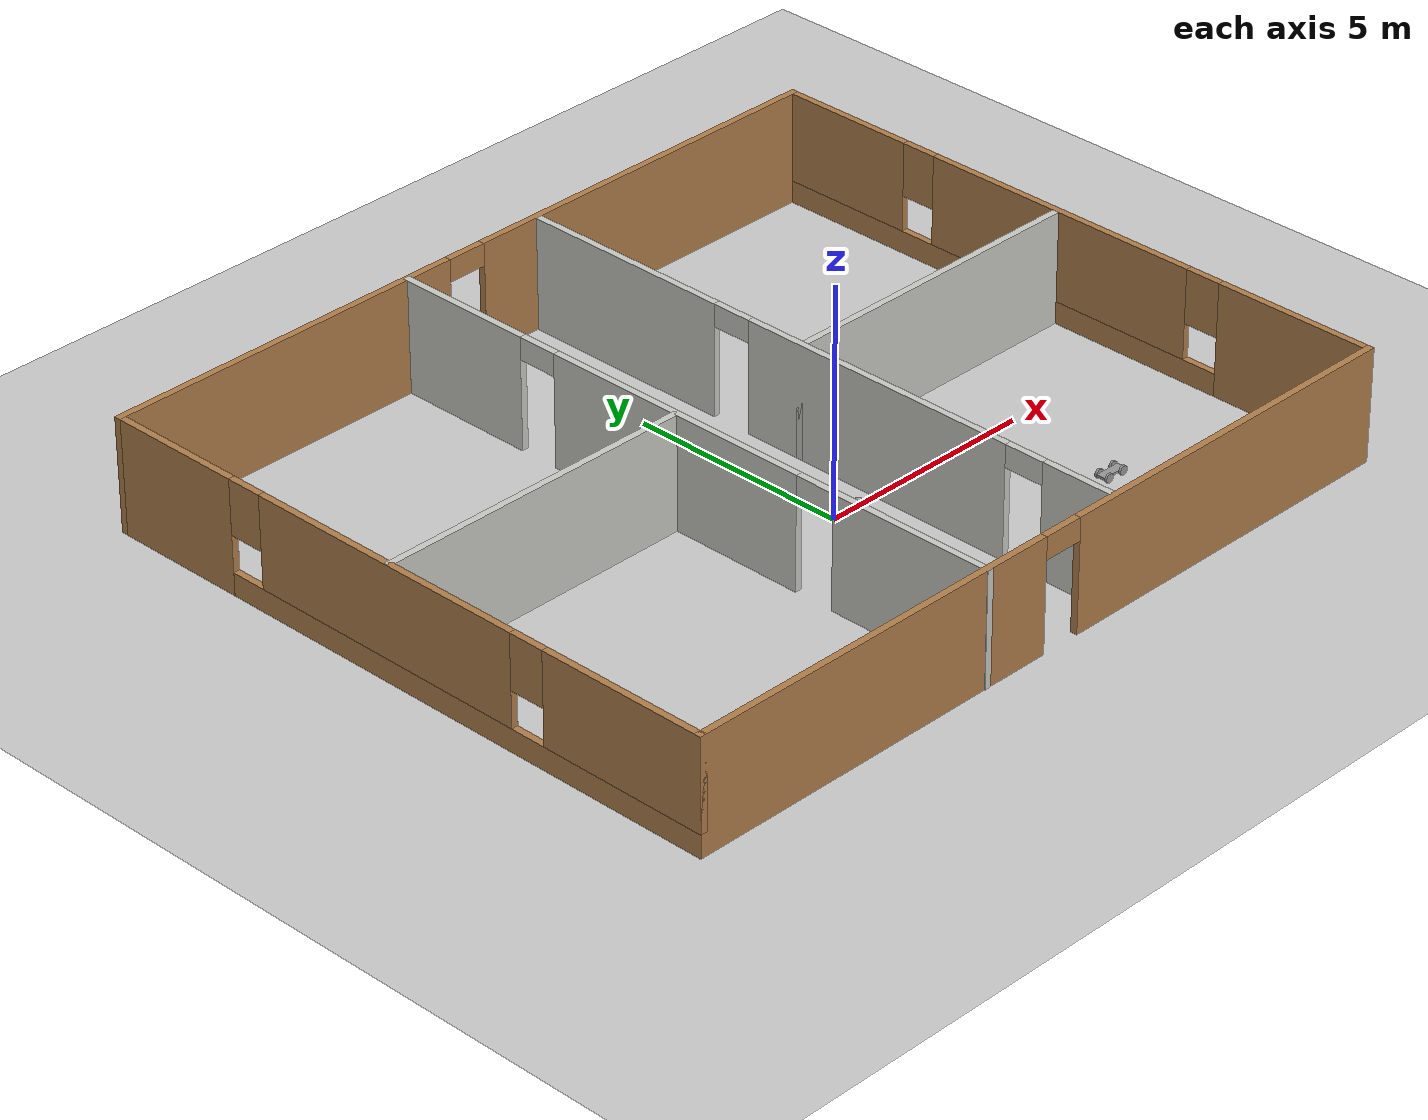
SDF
<sdf version="1.6">
 <world name="default">
  <light name="sun" type="directional">
   <pose>0 0 10 0 -0 0</pose>
   <diffuse>0.8 0.8 0.8 1</diffuse>
   <specular>0.2 0.2 0.2 1</specular>
   <attenuation>
    <range>1000</range>
    <constant>0.9</constant>
    <linear>0.01</linear>
    <quadratic>0.001</quadratic>
   </attenuation>
   <direction>-0.5 0.1 -0.9</direction>
  </light>
  <model name="ground_plane">
   <static>1</static>
   <link name="link">
    <collision name="collision">
     <geometry><plane><normal>0 0 1</normal><size>100 100</size></plane></geometry>
     <surface><friction><ode><mu>100</mu><mu2>50</mu2></ode></friction></surface>
    </collision>
    <visual name="visual">
     <cast_shadows>0</cast_shadows>
     <geometry><plane><normal>0 0 1</normal><size>100 100</size></plane></geometry>
     <material>
      <script><uri>file://media/materials/scripts/gazebo.material</uri><name>Gazebo/Grey</name></script>
     </material>
    </visual>
   </link>
  </model>
  <gravity>0 0 -9.8</gravity>
  <magnetic_field>6e-06 2.3e-05 -4.2e-05</magnetic_field>
  <atmosphere type="adiabatic"/>
  <physics name="default_physics" default="0" type="ode">
   <max_step_size>0.001</max_step_size>
   <real_time_factor>1</real_time_factor>
   <real_time_update_rate>1000</real_time_update_rate>
  </physics>
  <scene><ambient>0.4 0.4 0.4 1</ambient><background>0.7 0.7 0.7 1</background><shadows>1</shadows></scene>
  <spherical_coordinates>
   <surface_model>EARTH_WGS84</surface_model>
   <latitude_deg>0</latitude_deg>
   <longitude_deg>0</longitude_deg>
   <elevation>0</elevation>
   <heading_deg>0</heading_deg>
  </spherical_coordinates>
  <model name="project_building">
   <pose>-0.482591 1.67811 0 0 -0 0</pose>
   <link name="Wall_11">
    <pose>0 -7.43466 0 0 -0 0</pose>
    <visual name="Wall_11_Visual_0">
     <pose>-4.61874 0 1.25 0 -0 0</pose>
     <geometry><box><size>8.76252 0.15 2.5</size></box></geometry>
     <material>
      <script><uri>file://media/materials/scripts/gazebo.material</uri><name>Gazebo/Wood</name></script>
      <ambient>1 1 1 1</ambient>
     </material>
     <meta><layer>0</layer></meta>
    </visual>
    <collision name="Wall_11_Collision_0">
     <geometry><box><size>8.76252 0.15 2.5</size></box></geometry>
     <pose>-4.61874 0 1.25 0 -0 0</pose>
    </collision>
    <visual name="Wall_11_Visual_1">
     <pose>4.83126 0 1.25 0 -0 0</pose>
     <geometry><box><size>8.33748 0.15 2.5</size></box></geometry>
     <material>
      <script><uri>file://media/materials/scripts/gazebo.material</uri><name>Gazebo/Wood</name></script>
      <ambient>1 1 1 1</ambient>
     </material>
     <meta><layer>0</layer></meta>
    </visual>
    <collision name="Wall_11_Collision_1">
     <geometry><box><size>8.33748 0.15 2.5</size></box></geometry>
     <pose>4.83126 0 1.25 0 -0 0</pose>
    </collision>
    <visual name="Wall_11_Visual_2">
     <pose>0.212518 0 2.25 0 -0 0</pose>
     <geometry><box><size>0.9 0.15 0.5</size></box></geometry>
     <material>
      <script><uri>file://media/materials/scripts/gazebo.material</uri><name>Gazebo/Wood</name></script>
      <ambient>1 1 1 1</ambient>
     </material>
     <meta><layer>0</layer></meta>
    </visual>
    <collision name="Wall_11_Collision_2">
     <geometry><box><size>0.9 0.15 0.5</size></box></geometry>
     <pose>0.212518 0 2.25 0 -0 0</pose>
    </collision>
   </link>
   <link name="Wall_12">
    <pose>8.925 0.005346 0 0 -0 1.5708</pose>
    <visual name="Wall_12_Visual_0">
     <pose>-5.68761 0 1.25 0 -0 0</pose>
     <geometry><box><size>3.65478 0.15 2.5</size></box></geometry>
     <material>
      <script><uri>file://media/materials/scripts/gazebo.material</uri><name>Gazebo/Wood</name></script>
      <ambient>1 1 1 1</ambient>
     </material>
     <meta><layer>0</layer></meta>
    </visual>
    <collision name="Wall_12_Collision_0">
     <geometry><box><size>3.65478 0.15 2.5</size></box></geometry>
     <pose>-5.68761 0 1.25 0 -0 0</pose>
    </collision>
    <visual name="Wall_12_Visual_1">
     <pose>1.82739 0 0.25 0 -0 0</pose>
     <geometry><box><size>11.3752 0.15 0.5</size></box></geometry>
     <material>
      <script><uri>file://media/materials/scripts/gazebo.material</uri><name>Gazebo/Wood</name></script>
      <ambient>1 1 1 1</ambient>
     </material>
     <meta><layer>0</layer></meta>
    </visual>
    <collision name="Wall_12_Collision_1">
     <geometry><box><size>11.3752 0.15 0.5</size></box></geometry>
     <pose>1.82739 0 0.25 0 -0 0</pose>
    </collision>
    <visual name="Wall_12_Visual_2">
     <pose>0.2259 0 1.5 0 -0 0</pose>
     <geometry><box><size>6.57224 0.15 2</size></box></geometry>
     <material>
      <script><uri>file://media/materials/scripts/gazebo.material</uri><name>Gazebo/Wood</name></script>
      <ambient>1 1 1 1</ambient>
     </material>
     <meta><layer>0</layer></meta>
    </visual>
    <collision name="Wall_12_Collision_2">
     <geometry><box><size>6.57224 0.15 2</size></box></geometry>
     <pose>0.2259 0 1.5 0 -0 0</pose>
    </collision>
    <visual name="Wall_12_Visual_3">
     <pose>5.91351 0 1.5 0 -0 0</pose>
     <geometry><box><size>3.20298 0.15 2</size></box></geometry>
     <material>
      <script><uri>file://media/materials/scripts/gazebo.material</uri><name>Gazebo/Wood</name></script>
      <ambient>1 1 1 1</ambient>
     </material>
     <meta><layer>0</layer></meta>
    </visual>
    <collision name="Wall_12_Collision_3">
     <geometry><box><size>3.20298 0.15 2</size></box></geometry>
     <pose>5.91351 0 1.5 0 -0 0</pose>
    </collision>
    <visual name="Wall_12_Visual_4">
     <pose>-3.46022 0 1.9 0 -0 0</pose>
     <geometry><box><size>0.8 0.15 1.2</size></box></geometry>
     <material>
      <script><uri>file://media/materials/scripts/gazebo.material</uri><name>Gazebo/Wood</name></script>
      <ambient>1 1 1 1</ambient>
     </material>
     <meta><layer>0</layer></meta>
    </visual>
    <collision name="Wall_12_Collision_4">
     <geometry><box><size>0.8 0.15 1.2</size></box></geometry>
     <pose>-3.46022 0 1.9 0 -0 0</pose>
    </collision>
    <visual name="Wall_12_Visual_5">
     <pose>3.91202 0 1.9 0 -0 0</pose>
     <geometry><box><size>0.8 0.15 1.2</size></box></geometry>
     <material>
      <script><uri>file://media/materials/scripts/gazebo.material</uri><name>Gazebo/Wood</name></script>
      <ambient>1 1 1 1</ambient>
     </material>
     <meta><layer>0</layer></meta>
    </visual>
    <collision name="Wall_12_Collision_5">
     <geometry><box><size>0.8 0.15 1.2</size></box></geometry>
     <pose>3.91202 0 1.9 0 -0 0</pose>
    </collision>
   </link>
   <link name="Wall_16">
    <pose>0 7.44534 0 0 -0 3.14159</pose>
    <visual name="Wall_16_Visual_0">
     <pose>-4.6017 0 1.25 0 -0 0</pose>
     <geometry><box><size>8.7966 0.15 2.5</size></box></geometry>
     <material>
      <script><uri>file://media/materials/scripts/gazebo.material</uri><name>Gazebo/Wood</name></script>
      <ambient>1 1 1 1</ambient>
     </material>
     <meta><layer>0</layer></meta>
    </visual>
    <collision name="Wall_16_Collision_0">
     <geometry><box><size>8.7966 0.15 2.5</size></box></geometry>
     <pose>-4.6017 0 1.25 0 -0 0</pose>
    </collision>
    <visual name="Wall_16_Visual_1">
     <pose>4.8483 0 1.25 0 -0 0</pose>
     <geometry><box><size>8.3034 0.15 2.5</size></box></geometry>
     <material>
      <script><uri>file://media/materials/scripts/gazebo.material</uri><name>Gazebo/Wood</name></script>
      <ambient>1 1 1 1</ambient>
     </material>
     <meta><layer>0</layer></meta>
    </visual>
    <collision name="Wall_16_Collision_1">
     <geometry><box><size>8.3034 0.15 2.5</size></box></geometry>
     <pose>4.8483 0 1.25 0 -0 0</pose>
    </collision>
    <visual name="Wall_16_Visual_2">
     <pose>0.246597 0 2.25 0 -0 0</pose>
     <geometry><box><size>0.9 0.15 0.5</size></box></geometry>
     <material>
      <script><uri>file://media/materials/scripts/gazebo.material</uri><name>Gazebo/Wood</name></script>
      <ambient>1 1 1 1</ambient>
     </material>
     <meta><layer>0</layer></meta>
    </visual>
    <collision name="Wall_16_Collision_2">
     <geometry><box><size>0.9 0.15 0.5</size></box></geometry>
     <pose>0.246597 0 2.25 0 -0 0</pose>
    </collision>
   </link>
   <link name="Wall_17">
    <pose>-8.925 0.005346 0 0 0 -1.5708</pose>
    <visual name="Wall_17_Visual_0">
     <pose>-5.9441 0 1.25 0 -0 0</pose>
     <geometry><box><size>3.1418 0.15 2.5</size></box></geometry>
     <material>
      <script><uri>file://media/materials/scripts/gazebo.material</uri><name>Gazebo/Wood</name></script>
      <ambient>1 1 1 1</ambient>
     </material>
     <meta><layer>0</layer></meta>
    </visual>
    <collision name="Wall_17_Collision_0">
     <geometry><box><size>3.1418 0.15 2.5</size></box></geometry>
     <pose>-5.9441 0 1.25 0 -0 0</pose>
    </collision>
    <visual name="Wall_17_Visual_1">
     <pose>1.5709 0 0.25 0 -0 0</pose>
     <geometry><box><size>11.8882 0.15 0.5</size></box></geometry>
     <material>
      <script><uri>file://media/materials/scripts/gazebo.material</uri><name>Gazebo/Wood</name></script>
      <ambient>1 1 1 1</ambient>
     </material>
     <meta><layer>0</layer></meta>
    </visual>
    <collision name="Wall_17_Collision_1">
     <geometry><box><size>11.8882 0.15 0.5</size></box></geometry>
     <pose>1.5709 0 0.25 0 -0 0</pose>
    </collision>
    <visual name="Wall_17_Visual_2">
     <pose>-0.332966 0 1.5 0 -0 0</pose>
     <geometry><box><size>6.48047 0.15 2</size></box></geometry>
     <material>
      <script><uri>file://media/materials/scripts/gazebo.material</uri><name>Gazebo/Wood</name></script>
      <ambient>1 1 1 1</ambient>
     </material>
     <meta><layer>0</layer></meta>
    </visual>
    <collision name="Wall_17_Collision_2">
     <geometry><box><size>6.48047 0.15 2</size></box></geometry>
     <pose>-0.332966 0 1.5 0 -0 0</pose>
    </collision>
    <visual name="Wall_17_Visual_3">
     <pose>5.61114 0 1.5 0 -0 0</pose>
     <geometry><box><size>3.80773 0.15 2</size></box></geometry>
     <material>
      <script><uri>file://media/materials/scripts/gazebo.material</uri><name>Gazebo/Wood</name></script>
      <ambient>1 1 1 1</ambient>
     </material>
     <meta><layer>0</layer></meta>
    </visual>
    <collision name="Wall_17_Collision_3">
     <geometry><box><size>3.80773 0.15 2</size></box></geometry>
     <pose>5.61114 0 1.5 0 -0 0</pose>
    </collision>
    <visual name="Wall_17_Visual_4">
     <pose>-3.9732 0 1.9 0 -0 0</pose>
     <geometry><box><size>0.8 0.15 1.2</size></box></geometry>
     <material>
      <script><uri>file://media/materials/scripts/gazebo.material</uri><name>Gazebo/Wood</name></script>
      <ambient>1 1 1 1</ambient>
     </material>
     <meta><layer>0</layer></meta>
    </visual>
    <collision name="Wall_17_Collision_4">
     <geometry><box><size>0.8 0.15 1.2</size></box></geometry>
     <pose>-3.9732 0 1.9 0 -0 0</pose>
    </collision>
    <visual name="Wall_17_Visual_5">
     <pose>3.30727 0 1.9 0 -0 0</pose>
     <geometry><box><size>0.8 0.15 1.2</size></box></geometry>
     <material>
      <script><uri>file://media/materials/scripts/gazebo.material</uri><name>Gazebo/Wood</name></script>
      <ambient>1 1 1 1</ambient>
     </material>
     <meta><layer>0</layer></meta>
    </visual>
    <collision name="Wall_17_Collision_5">
     <geometry><box><size>0.8 0.15 1.2</size></box></geometry>
     <pose>3.30727 0 1.9 0 -0 0</pose>
    </collision>
   </link>
   <link name="Wall_19">
    <pose>-1.74535 -0.020346 0 0 0 -1.5708</pose>
    <visual name="Wall_19_Visual_0">
     <pose>-5.89797 0 1.25 0 -0 0</pose>
     <geometry><box><size>3.20406 0.15 2.5</size></box></geometry>
     <material>
      <script><uri>file://media/materials/scripts/gazebo.material</uri><name>Gazebo/CeilingTiled</name></script>
      <ambient>1 1 1 1</ambient>
     </material>
     <meta><layer>0</layer></meta>
    </visual>
    <collision name="Wall_19_Collision_0">
     <geometry><box><size>3.20406 0.15 2.5</size></box></geometry>
     <pose>-5.89797 0 1.25 0 -0 0</pose>
    </collision>
    <visual name="Wall_19_Visual_1">
     <pose>-0.266887 0 1.25 0 -0 0</pose>
     <geometry><box><size>6.25811 0.15 2.5</size></box></geometry>
     <material>
      <script><uri>file://media/materials/scripts/gazebo.material</uri><name>Gazebo/CeilingTiled</name></script>
      <ambient>1 1 1 1</ambient>
     </material>
     <meta><layer>0</layer></meta>
    </visual>
    <collision name="Wall_19_Collision_1">
     <geometry><box><size>6.25811 0.15 2.5</size></box></geometry>
     <pose>-0.266887 0 1.25 0 -0 0</pose>
    </collision>
    <visual name="Wall_19_Visual_2">
     <pose>5.63108 0 1.25 0 -0 0</pose>
     <geometry><box><size>3.73783 0.15 2.5</size></box></geometry>
     <material>
      <script><uri>file://media/materials/scripts/gazebo.material</uri><name>Gazebo/CeilingTiled</name></script>
      <ambient>1 1 1 1</ambient>
     </material>
     <meta><layer>0</layer></meta>
    </visual>
    <collision name="Wall_19_Collision_2">
     <geometry><box><size>3.73783 0.15 2.5</size></box></geometry>
     <pose>5.63108 0 1.25 0 -0 0</pose>
    </collision>
    <visual name="Wall_19_Visual_3">
     <pose>-3.84594 0 2.25 0 -0 0</pose>
     <geometry><box><size>0.9 0.15 0.5</size></box></geometry>
     <material>
      <script><uri>file://media/materials/scripts/gazebo.material</uri><name>Gazebo/CeilingTiled</name></script>
      <ambient>1 1 1 1</ambient>
     </material>
     <meta><layer>0</layer></meta>
    </visual>
    <collision name="Wall_19_Collision_3">
     <geometry><box><size>0.9 0.15 0.5</size></box></geometry>
     <pose>-3.84594 0 2.25 0 -0 0</pose>
    </collision>
    <visual name="Wall_19_Visual_4">
     <pose>3.31217 0 2.25 0 -0 0</pose>
     <geometry><box><size>0.9 0.15 0.5</size></box></geometry>
     <material>
      <script><uri>file://media/materials/scripts/gazebo.material</uri><name>Gazebo/CeilingTiled</name></script>
      <ambient>1 1 1 1</ambient>
     </material>
     <meta><layer>0</layer></meta>
    </visual>
    <collision name="Wall_19_Collision_4">
     <geometry><box><size>0.9 0.15 0.5</size></box></geometry>
     <pose>3.31217 0 2.25 0 -0 0</pose>
    </collision>
   </link>
   <link name="Wall_21">
    <pose>1.68076 0.010245 0 0 0 -1.5708</pose>
    <visual name="Wall_21_Visual_0">
     <pose>-5.01086 0 1.25 0 -0 0</pose>
     <geometry><box><size>4.97829 0.15 2.5</size></box></geometry>
     <material>
      <script><uri>file://media/materials/scripts/gazebo.material</uri><name>Gazebo/CeilingTiled</name></script>
      <ambient>1 1 1 1</ambient>
     </material>
     <meta><layer>0</layer></meta>
    </visual>
    <collision name="Wall_21_Collision_0">
     <geometry><box><size>4.97829 0.15 2.5</size></box></geometry>
     <pose>-5.01086 0 1.25 0 -0 0</pose>
    </collision>
    <visual name="Wall_21_Visual_1">
     <pose>1.62971 0 1.25 0 -0 0</pose>
     <geometry><box><size>6.50284 0.15 2.5</size></box></geometry>
     <material>
      <script><uri>file://media/materials/scripts/gazebo.material</uri><name>Gazebo/CeilingTiled</name></script>
      <ambient>1 1 1 1</ambient>
     </material>
     <meta><layer>0</layer></meta>
    </visual>
    <collision name="Wall_21_Collision_1">
     <geometry><box><size>6.50284 0.15 2.5</size></box></geometry>
     <pose>1.62971 0 1.25 0 -0 0</pose>
    </collision>
    <visual name="Wall_21_Visual_2">
     <pose>6.64056 0 1.25 0 -0 0</pose>
     <geometry><box><size>1.71887 0.15 2.5</size></box></geometry>
     <material>
      <script><uri>file://media/materials/scripts/gazebo.material</uri><name>Gazebo/CeilingTiled</name></script>
      <ambient>1 1 1 1</ambient>
     </material>
     <meta><layer>0</layer></meta>
    </visual>
    <collision name="Wall_21_Collision_2">
     <geometry><box><size>1.71887 0.15 2.5</size></box></geometry>
     <pose>6.64056 0 1.25 0 -0 0</pose>
    </collision>
    <visual name="Wall_21_Visual_3">
     <pose>-2.07171 0 2.25 0 -0 0</pose>
     <geometry><box><size>0.9 0.15 0.5</size></box></geometry>
     <material>
      <script><uri>file://media/materials/scripts/gazebo.material</uri><name>Gazebo/CeilingTiled</name></script>
      <ambient>1 1 1 1</ambient>
     </material>
     <meta><layer>0</layer></meta>
    </visual>
    <collision name="Wall_21_Collision_3">
     <geometry><box><size>0.9 0.15 0.5</size></box></geometry>
     <pose>-2.07171 0 2.25 0 -0 0</pose>
    </collision>
    <visual name="Wall_21_Visual_4">
     <pose>5.33113 0 2.25 0 -0 0</pose>
     <geometry><box><size>0.9 0.15 0.5</size></box></geometry>
     <material>
      <script><uri>file://media/materials/scripts/gazebo.material</uri><name>Gazebo/CeilingTiled</name></script>
      <ambient>1 1 1 1</ambient>
     </material>
     <meta><layer>0</layer></meta>
    </visual>
    <collision name="Wall_21_Collision_4">
     <geometry><box><size>0.9 0.15 0.5</size></box></geometry>
     <pose>5.33113 0 2.25 0 -0 0</pose>
    </collision>
   </link>
   <link name="Wall_23">
    <collision name="Wall_23_Collision">
     <geometry><box><size>7.25 0.15 2.5</size></box></geometry>
     <pose>0 0 1.25 0 -0 0</pose>
    </collision>
    <visual name="Wall_23_Visual">
     <pose>0 0 1.25 0 -0 0</pose>
     <geometry><box><size>7.25 0.15 2.5</size></box></geometry>
     <material>
      <script><uri>file://media/materials/scripts/gazebo.material</uri><name>Gazebo/CeilingTiled</name></script>
      <ambient>1 1 1 1</ambient>
     </material>
     <meta><layer>0</layer></meta>
    </visual>
    <pose>-5.35346 0.215951 0 0 -0 0</pose>
   </link>
   <link name="Wall_25">
    <collision name="Wall_25_Collision">
     <geometry><box><size>7.25 0.15 2.5</size></box></geometry>
     <pose>0 0 1.25 0 -0 0</pose>
    </collision>
    <visual name="Wall_25_Visual">
     <pose>0 0 1.25 0 -0 0</pose>
     <geometry><box><size>7.25 0.15 2.5</size></box></geometry>
     <material>
      <script><uri>file://media/materials/scripts/gazebo.material</uri><name>Gazebo/CeilingTiled</name></script>
      <ambient>1 1 1 1</ambient>
     </material>
     <meta><layer>0</layer></meta>
    </visual>
    <pose>5.23076 0.277131 0 0 -0 0</pose>
   </link>
   <static>1</static>
  </model>
  <model name="project_car2">
   <link name="link_0">
    <pose>0 5e-06 0 0 -0 0</pose>
    <inertial>
     <mass>1</mass>
     <inertia>
      <ixx>0.166667</ixx>
      <ixy>0</ixy>
      <ixz>0</ixz>
      <iyy>0.166667</iyy>
      <iyz>0</iyz>
      <izz>0.166667</izz>
     </inertia>
    </inertial>
    <visual name="visual">
     <geometry><box><size>0.6 0.2 0.05</size></box></geometry>
     <material>
      <lighting>1</lighting>
      <script><uri>file://media/materials/scripts/gazebo.material</uri><name>Gazebo/Grey</name></script>
      <shader type="pixel"><normal_map>__default__</normal_map></shader>
      <ambient>0.3 0.3 0.3 1</ambient>
      <diffuse>0.7 0.7 0.7 1</diffuse>
      <specular>0.01 0.01 0.01 1</specular>
      <emissive>0 0 0 1</emissive>
     </material>
    </visual>
    <collision name="collision">
     <geometry><box><size>0.6 0.2 0.05</size></box></geometry>
     <surface>
      <friction>
       <ode><mu>1</mu><mu2>1</mu2><fdir1>0 0 0</fdir1><slip1>0</slip1><slip2>0</slip2></ode>
       <torsional>
        <coefficient>1</coefficient>
        <patch_radius>0</patch_radius>
        <surface_radius>0</surface_radius>
        <use_patch_radius>1</use_patch_radius>
        <ode><slip>0</slip></ode>
       </torsional>
      </friction>
      <bounce><restitution_coefficient>0</restitution_coefficient><threshold>1e+06</threshold></bounce>
      <contact>
       <collide_without_contact>0</collide_without_contact>
       <collide_without_contact_bitmask>1</collide_without_contact_bitmask>
       <collide_bitmask>1</collide_bitmask>
       <ode>
        <soft_cfm>0</soft_cfm>
        <soft_erp>0.2</soft_erp>
        <kp>1e+13</kp>
        <kd>1</kd>
        <max_vel>0.01</max_vel>
        <min_depth>0</min_depth>
       </ode>
       <bullet>
        <split_impulse>1</split_impulse>
        <split_impulse_penetration_threshold>-0.01</split_impulse_penetration_threshold>
        <soft_cfm>0</soft_cfm>
        <soft_erp>0.2</soft_erp>
        <kp>1e+13</kp>
        <kd>1</kd>
       </bullet>
      </contact>
     </surface>
    </collision>
   </link>
   <link name="link_1">
    <pose>0.2 -0.125008 0 1.5707 -0 0</pose>
    <inertial>
     <mass>1</mass>
     <inertia><ixx>0.145833</ixx><ixy>0</ixy><ixz>0</ixz><iyy>0.145833</iyy><iyz>0</iyz><izz>0.125</izz></inertia>
    </inertial>
    <visual name="visual">
     <geometry><cylinder><radius>0.1</radius><length>0.05</length></cylinder></geometry>
     <material>
      <lighting>1</lighting>
      <script><uri>file://media/materials/scripts/gazebo.material</uri><name>Gazebo/Grey</name></script>
      <shader type="pixel"><normal_map>__default__</normal_map></shader>
      <ambient>0.3 0.3 0.3 1</ambient>
      <diffuse>0.7 0.7 0.7 1</diffuse>
      <specular>0.01 0.01 0.01 1</specular>
      <emissive>0 0 0 1</emissive>
     </material>
    </visual>
    <collision name="collision">
     <geometry><cylinder><radius>0.1</radius><length>0.05</length></cylinder></geometry>
     <surface>
      <friction>
       <ode><mu>1</mu><mu2>1</mu2><fdir1>0 0 0</fdir1><slip1>0</slip1><slip2>0</slip2></ode>
       <torsional>
        <coefficient>1</coefficient>
        <patch_radius>0</patch_radius>
        <surface_radius>0</surface_radius>
        <use_patch_radius>1</use_patch_radius>
        <ode><slip>0</slip></ode>
       </torsional>
      </friction>
      <bounce><restitution_coefficient>0</restitution_coefficient><threshold>1e+06</threshold></bounce>
      <contact>
       <collide_without_contact>0</collide_without_contact>
       <collide_without_contact_bitmask>1</collide_without_contact_bitmask>
       <collide_bitmask>1</collide_bitmask>
       <ode>
        <soft_cfm>0</soft_cfm>
        <soft_erp>0.2</soft_erp>
        <kp>1e+13</kp>
        <kd>1</kd>
        <max_vel>0.01</max_vel>
        <min_depth>0</min_depth>
       </ode>
       <bullet>
        <split_impulse>1</split_impulse>
        <split_impulse_penetration_threshold>-0.01</split_impulse_penetration_threshold>
        <soft_cfm>0</soft_cfm>
        <soft_erp>0.2</soft_erp>
        <kp>1e+13</kp>
        <kd>1</kd>
       </bullet>
      </contact>
     </surface>
    </collision>
   </link>
   <link name="link_1_clone">
    <pose>-0.2 0.125005 0 1.5707 -0 0</pose>
    <inertial>
     <mass>1</mass>
     <inertia><ixx>0.145833</ixx><ixy>0</ixy><ixz>0</ixz><iyy>0.145833</iyy><iyz>0</iyz><izz>0.125</izz></inertia>
    </inertial>
    <visual name="visual">
     <geometry><cylinder><radius>0.1</radius><length>0.05</length></cylinder></geometry>
     <material>
      <lighting>1</lighting>
      <script><uri>file://media/materials/scripts/gazebo.material</uri><name>Gazebo/Grey</name></script>
      <shader type="pixel"><normal_map>__default__</normal_map></shader>
      <ambient>0.3 0.3 0.3 1</ambient>
      <diffuse>0.7 0.7 0.7 1</diffuse>
      <specular>0.01 0.01 0.01 1</specular>
      <emissive>0 0 0 1</emissive>
     </material>
    </visual>
    <collision name="collision">
     <geometry><cylinder><radius>0.1</radius><length>0.05</length></cylinder></geometry>
     <surface>
      <friction>
       <ode><mu>1</mu><mu2>1</mu2><fdir1>0 0 0</fdir1><slip1>0</slip1><slip2>0</slip2></ode>
       <torsional>
        <coefficient>1</coefficient>
        <patch_radius>0</patch_radius>
        <surface_radius>0</surface_radius>
        <use_patch_radius>1</use_patch_radius>
        <ode><slip>0</slip></ode>
       </torsional>
      </friction>
      <bounce><restitution_coefficient>0</restitution_coefficient><threshold>1e+06</threshold></bounce>
      <contact>
       <collide_without_contact>0</collide_without_contact>
       <collide_without_contact_bitmask>1</collide_without_contact_bitmask>
       <collide_bitmask>1</collide_bitmask>
       <ode>
        <soft_cfm>0</soft_cfm>
        <soft_erp>0.2</soft_erp>
        <kp>1e+13</kp>
        <kd>1</kd>
        <max_vel>0.01</max_vel>
        <min_depth>0</min_depth>
       </ode>
       <bullet>
        <split_impulse>1</split_impulse>
        <split_impulse_penetration_threshold>-0.01</split_impulse_penetration_threshold>
        <soft_cfm>0</soft_cfm>
        <soft_erp>0.2</soft_erp>
        <kp>1e+13</kp>
        <kd>1</kd>
       </bullet>
      </contact>
     </surface>
    </collision>
   </link>
   <link name="link_1_clone_0">
    <pose>0.2 0.125005 0 1.5707 -0 0</pose>
    <inertial>
     <mass>1</mass>
     <inertia><ixx>0.145833</ixx><ixy>0</ixy><ixz>0</ixz><iyy>0.145833</iyy><iyz>0</iyz><izz>0.125</izz></inertia>
    </inertial>
    <visual name="visual">
     <geometry><cylinder><radius>0.1</radius><length>0.05</length></cylinder></geometry>
     <material>
      <lighting>1</lighting>
      <script><uri>file://media/materials/scripts/gazebo.material</uri><name>Gazebo/Grey</name></script>
      <shader type="pixel"><normal_map>__default__</normal_map></shader>
      <ambient>0.3 0.3 0.3 1</ambient>
      <diffuse>0.7 0.7 0.7 1</diffuse>
      <specular>0.01 0.01 0.01 1</specular>
      <emissive>0 0 0 1</emissive>
     </material>
    </visual>
    <collision name="collision">
     <geometry><cylinder><radius>0.1</radius><length>0.05</length></cylinder></geometry>
     <surface>
      <friction>
       <ode><mu>1</mu><mu2>1</mu2><fdir1>0 0 0</fdir1><slip1>0</slip1><slip2>0</slip2></ode>
       <torsional>
        <coefficient>1</coefficient>
        <patch_radius>0</patch_radius>
        <surface_radius>0</surface_radius>
        <use_patch_radius>1</use_patch_radius>
        <ode><slip>0</slip></ode>
       </torsional>
      </friction>
      <bounce><restitution_coefficient>0</restitution_coefficient><threshold>1e+06</threshold></bounce>
      <contact>
       <collide_without_contact>0</collide_without_contact>
       <collide_without_contact_bitmask>1</collide_without_contact_bitmask>
       <collide_bitmask>1</collide_bitmask>
       <ode>
        <soft_cfm>0</soft_cfm>
        <soft_erp>0.2</soft_erp>
        <kp>1e+13</kp>
        <kd>1</kd>
        <max_vel>0.01</max_vel>
        <min_depth>0</min_depth>
       </ode>
       <bullet>
        <split_impulse>1</split_impulse>
        <split_impulse_penetration_threshold>-0.01</split_impulse_penetration_threshold>
        <soft_cfm>0</soft_cfm>
        <soft_erp>0.2</soft_erp>
        <kp>1e+13</kp>
        <kd>1</kd>
       </bullet>
      </contact>
     </surface>
    </collision>
   </link>
   <link name="link_1_clone_1">
    <pose>-0.2 -0.125005 0 1.5707 -0 0</pose>
    <inertial>
     <mass>1</mass>
     <inertia><ixx>0.145833</ixx><ixy>0</ixy><ixz>0</ixz><iyy>0.145833</iyy><iyz>0</iyz><izz>0.125</izz></inertia>
    </inertial>
    <visual name="visual">
     <geometry><cylinder><radius>0.1</radius><length>0.05</length></cylinder></geometry>
     <material>
      <lighting>1</lighting>
      <script><uri>file://media/materials/scripts/gazebo.material</uri><name>Gazebo/Grey</name></script>
      <shader type="pixel"><normal_map>__default__</normal_map></shader>
      <ambient>0.3 0.3 0.3 1</ambient>
      <diffuse>0.7 0.7 0.7 1</diffuse>
      <specular>0.01 0.01 0.01 1</specular>
      <emissive>0 0 0 1</emissive>
     </material>
    </visual>
    <collision name="collision">
     <geometry><cylinder><radius>0.1</radius><length>0.05</length></cylinder></geometry>
     <surface>
      <friction>
       <ode><mu>1</mu><mu2>1</mu2><fdir1>0 0 0</fdir1><slip1>0</slip1><slip2>0</slip2></ode>
       <torsional>
        <coefficient>1</coefficient>
        <patch_radius>0</patch_radius>
        <surface_radius>0</surface_radius>
        <use_patch_radius>1</use_patch_radius>
        <ode><slip>0</slip></ode>
       </torsional>
      </friction>
      <bounce><restitution_coefficient>0</restitution_coefficient><threshold>1e+06</threshold></bounce>
      <contact>
       <collide_without_contact>0</collide_without_contact>
       <collide_without_contact_bitmask>1</collide_without_contact_bitmask>
       <collide_bitmask>1</collide_bitmask>
       <ode>
        <soft_cfm>0</soft_cfm>
        <soft_erp>0.2</soft_erp>
        <kp>1e+13</kp>
        <kd>1</kd>
        <max_vel>0.01</max_vel>
        <min_depth>0</min_depth>
       </ode>
       <bullet>
        <split_impulse>1</split_impulse>
        <split_impulse_penetration_threshold>-0.01</split_impulse_penetration_threshold>
        <soft_cfm>0</soft_cfm>
        <soft_erp>0.2</soft_erp>
        <kp>1e+13</kp>
        <kd>1</kd>
       </bullet>
      </contact>
     </surface>
    </collision>
   </link>
   <joint name="link_1_JOINT_0" type="revolute">
    <parent>link_0</parent>
    <child>link_1</child>
    <axis>
     <xyz>1 0 0</xyz>
     <use_parent_model_frame>0</use_parent_model_frame>
     <limit>
      <lower>-1.79769e+308</lower>
      <upper>1.79769e+308</upper>
      <effort>-1</effort>
      <velocity>-1</velocity>
     </limit>
     <dynamics>
      <spring_reference>0</spring_reference>
      <spring_stiffness>0</spring_stiffness>
      <damping>0</damping>
     </dynamics>
    </axis>
    <physics>
     <ode><limit><cfm>0</cfm><erp>0.2</erp></limit><suspension><cfm>0</cfm><erp>0.2</erp></suspension></ode>
    </physics>
   </joint>
   <joint name="link_1_clone_0_JOINT_1" type="revolute">
    <parent>link_0</parent>
    <child>link_1_clone_0</child>
    <axis>
     <xyz>1 0 0</xyz>
     <use_parent_model_frame>0</use_parent_model_frame>
     <limit>
      <lower>-1.79769e+308</lower>
      <upper>1.79769e+308</upper>
      <effort>-1</effort>
      <velocity>-1</velocity>
     </limit>
     <dynamics>
      <spring_reference>0</spring_reference>
      <spring_stiffness>0</spring_stiffness>
      <damping>0</damping>
     </dynamics>
    </axis>
    <physics>
     <ode><limit><cfm>0</cfm><erp>0.2</erp></limit><suspension><cfm>0</cfm><erp>0.2</erp></suspension></ode>
    </physics>
   </joint>
   <joint name="link_1_clone_1_JOINT_2" type="revolute">
    <parent>link_0</parent>
    <child>link_1_clone_1</child>
    <axis>
     <xyz>1 0 0</xyz>
     <use_parent_model_frame>0</use_parent_model_frame>
     <limit>
      <lower>-1.79769e+308</lower>
      <upper>1.79769e+308</upper>
      <effort>-1</effort>
      <velocity>-1</velocity>
     </limit>
     <dynamics>
      <spring_reference>0</spring_reference>
      <spring_stiffness>0</spring_stiffness>
      <damping>0</damping>
     </dynamics>
    </axis>
    <physics>
     <ode><limit><cfm>0</cfm><erp>0.2</erp></limit><suspension><cfm>0</cfm><erp>0.2</erp></suspension></ode>
    </physics>
   </joint>
   <joint name="link_1_clone_JOINT_3" type="revolute">
    <parent>link_0</parent>
    <child>link_1_clone</child>
    <axis>
     <xyz>1 0 0</xyz>
     <use_parent_model_frame>0</use_parent_model_frame>
     <limit>
      <lower>-1.79769e+308</lower>
      <upper>1.79769e+308</upper>
      <effort>-1</effort>
      <velocity>-1</velocity>
     </limit>
     <dynamics>
      <spring_reference>0</spring_reference>
      <spring_stiffness>0</spring_stiffness>
      <damping>0</damping>
     </dynamics>
    </axis>
    <physics>
     <ode><limit><cfm>0</cfm><erp>0.2</erp></limit><suspension><cfm>0</cfm><erp>0.2</erp></suspension></ode>
    </physics>
   </joint>
   <static>0</static>
   <pose>4.75914 -2.69018 0.099999 -5e-06 -0 0.000108</pose>
  </model>
  <model name="my_ball">
   <link name="link_0">
    <inertial>
     <mass>1</mass>
     <inertia><ixx>0.1</ixx><ixy>0</ixy><ixz>0</ixz><iyy>0.1</iyy><iyz>0</iyz><izz>0.1</izz></inertia>
    </inertial>
    <visual name="visual">
     <geometry><sphere><radius>0.1</radius></sphere></geometry>
     <material>
      <lighting>1</lighting>
      <script><uri>file://media/materials/scripts/gazebo.material</uri><name>Gazebo/Grey</name></script>
      <ambient>1 1 1 1</ambient>
      <diffuse>1 1 1 1</diffuse>
      <specular>1 1 1 1</specular>
      <emissive>1 1 1 1</emissive>
      <shader type="vertex"><normal_map>__default__</normal_map></shader>
     </material>
    </visual>
    <collision name="collision">
     <geometry><sphere><radius>0.1</radius></sphere></geometry>
     <surface>
      <friction>
       <ode><mu>1</mu><mu2>1</mu2><fdir1>0 0 0</fdir1><slip1>0</slip1><slip2>0</slip2></ode>
       <torsional>
        <coefficient>1</coefficient>
        <patch_radius>0</patch_radius>
        <surface_radius>0</surface_radius>
        <use_patch_radius>1</use_patch_radius>
        <ode><slip>0</slip></ode>
       </torsional>
      </friction>
      <bounce><restitution_coefficient>0</restitution_coefficient><threshold>1e+06</threshold></bounce>
      <contact>
       <collide_without_contact>0</collide_without_contact>
       <collide_without_contact_bitmask>1</collide_without_contact_bitmask>
       <collide_bitmask>1</collide_bitmask>
       <ode>
        <soft_cfm>0</soft_cfm>
        <soft_erp>0.2</soft_erp>
        <kp>1e+13</kp>
        <kd>1</kd>
        <max_vel>0.01</max_vel>
        <min_depth>0</min_depth>
       </ode>
       <bullet>
        <split_impulse>1</split_impulse>
        <split_impulse_penetration_threshold>-0.01</split_impulse_penetration_threshold>
        <soft_cfm>0</soft_cfm>
        <soft_erp>0.2</soft_erp>
        <kp>1e+13</kp>
        <kd>1</kd>
       </bullet>
      </contact>
     </surface>
    </collision>
   </link>
   <static>0</static>
   <pose>0.655528 -0.009482 0.1 0 -0 0</pose>
  </model>
 </world>
</sdf>
